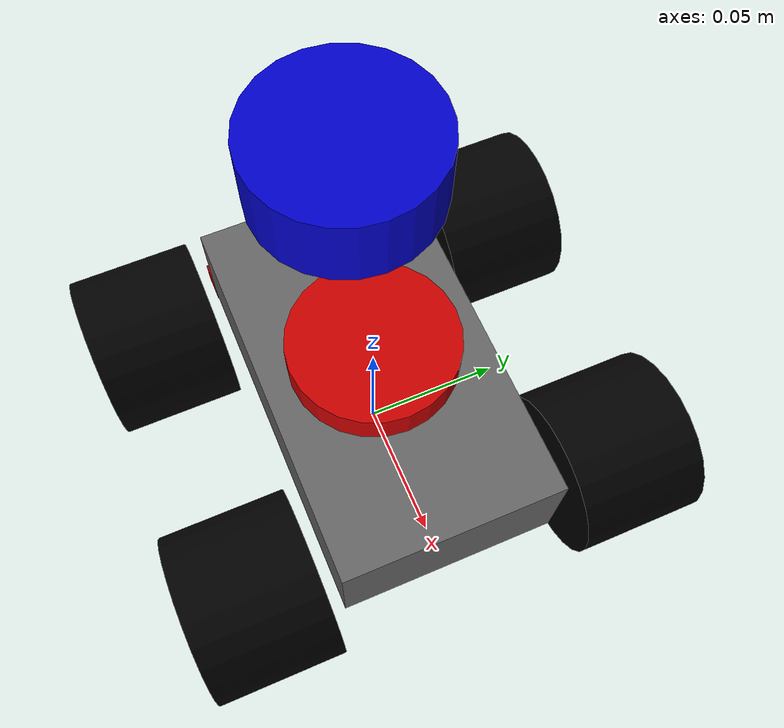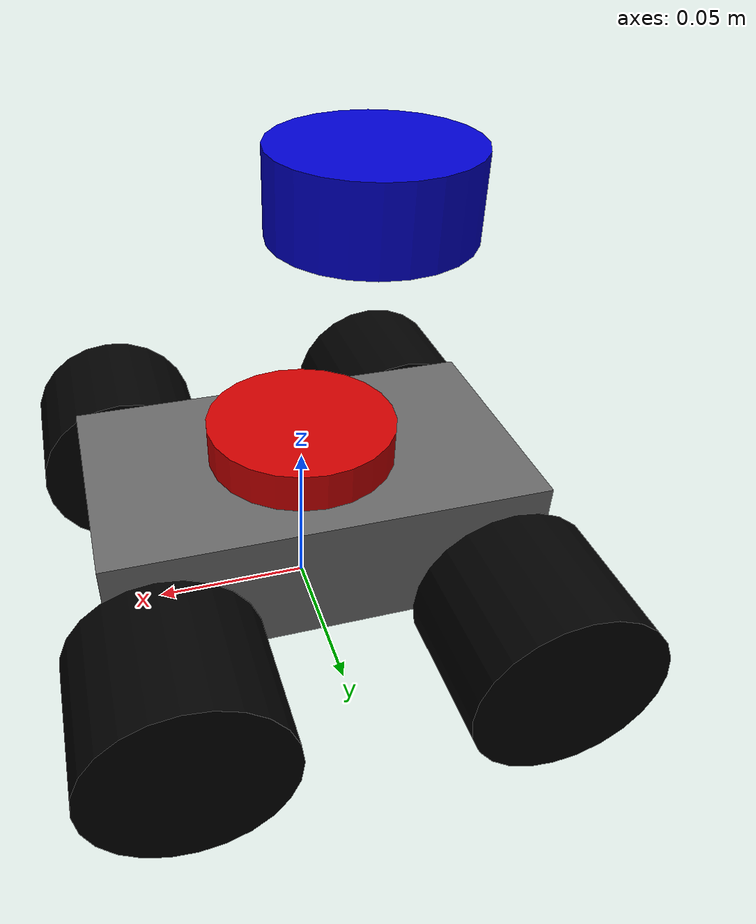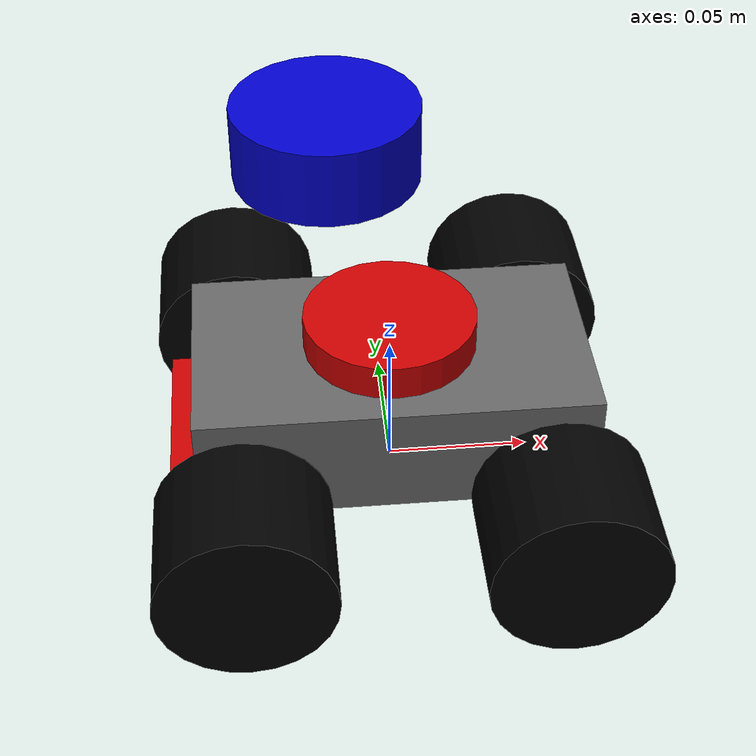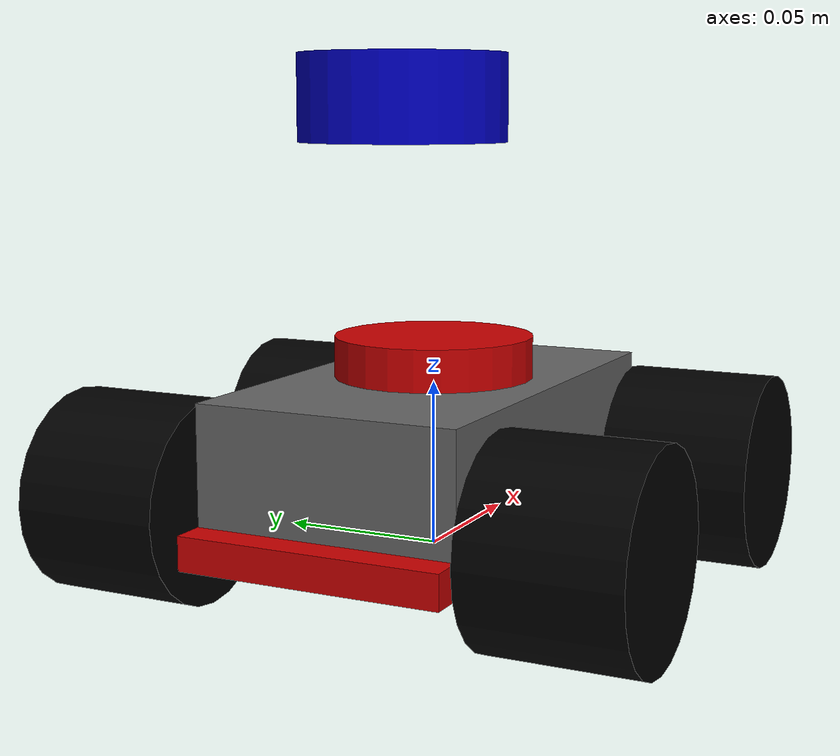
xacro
<?xml version="1.0"?>
<robot name="tracked_robot" xmlns:xacro="http://www.ros.org/wiki/xacro">
  <!-- ROS 2 ament-index lookup -->
  <xacro:include filename="$(find cyber_is_description)/urdf/common_properties.xacro"/>

  <!-- Parametry (stałe) używane w modelu -->
  <xacro:property name="wheel_radius" value="0.03"/>        <!-- Promień koła (55 mm średnicy) [m] -->
  <xacro:property name="wheel_diameter" value="${2 * wheel_radius}"/>
  <xacro:property name="chassis_height" value="0.04"/>
  <xacro:property name="track_width" value="0.045"/>          <!-- Szerokość (grubość) gąsienicy/koła [m] -->
  <xacro:property name="track_spacing" value="0.135"/>        <!-- Rozstaw między gąsienicami (środki) [m] -->
  <xacro:property name="half_track_spacing" value="${track_spacing / 2.0}"/>  <!-- Połowa rozstawu, odległość od środka do każdej gąsienicy -->
  <xacro:property name="frame_length" value="0.137"/>         <!-- Długość ramy [m] -->
  <xacro:property name="frame_width" value="0.079"/>          <!-- Szerokość ramy [m] -->
  <xacro:property name="chassis_top_height" value="0.052"/>     <!-- Wysokość od podłoża do wierzchu ramy [m] -->
  <xacro:property name="track_center_height" value="0.03"/>   <!-- Wysokość osi kół / środka gąsienicy nad podłożem [m] -->
  <xacro:property name="scan_height" value="0.135"/>          <!-- Wysokość skanera nad podłożem [m] -->
  <!-- Obliczenie pomocnicze: offset do umieszczenia ramy tak, by dolna powierzchnia była na podłożu -->
  <!-- (base_link jest na wysokości track_center_height, więc przesunięcie = połowa wysokości ramy - track_center_height) -->
  <xacro:property name="frame_bottom_offset" value="${chassis_top_height/2.0 - track_center_height}"/>

  <!-- Link bazowy na podłożu -->
  <link name="base_footprint">
    <!-- Uproszczona bryła kolizyjna reprezentująca obrys robota (prostokąt obejmujący gąsienice) -->
    <collision>
      <!-- Ustawienie pudełka tak, by leżało płasko na podłożu (połowa grubości nad podłożem) -->
      <origin xyz="0 0 0" rpy="0 0 0"/>
      <geometry>
        <!-- Prostokąt: długość ~ długości ramy, szerokość ~ rozstaw zewnętrzny gąsienic, niewielka grubość -->
        <box size="${frame_length} ${track_spacing + track_width} 0.01"/>
      </geometry>
    </collision>
    <!-- Ponieważ base_footprint jest tylko pomocniczy, nie definiujemy widocznej geometrii (visual) -->
    <inertial>
      <!-- Bardzo mała masa i momenty bezwładności (link fikcyjny łączony na sztywno z bazą) -->
      <mass value="0.001"/>
      <origin xyz="0 0 0" rpy="0 0 0"/>
      <inertia ixx="0.0001" ixy="0" ixz="0" iyy="0.0001" iyz="0" izz="0.0001"/>
    </inertial>
  </link>

  <!-- Link główny (rama pojazdu) -->
  <link name="base_link">
    <!-- Inercja ramy: przybliżona jako prostopadłościan o podanych wymiarach -->
    <inertial>
      <mass value="4.0"/>  <!-- Założona masa całej bazy [kg] -->
      <origin xyz="0 0 0" rpy="0 0 0"/>
      <!-- Moment bezwładności prostopadłościanu: Ixx = m/12*(y^2+z^2), Iyy = m/12*(x^2+z^2), Izz = m/12*(x^2+y^2) -->
      <inertia
          ixx="${4.0 * (frame_width*frame_width + chassis_top_height*chassis_top_height) / 12.0}"
          ixy="0" ixz="0"
          iyy="${4.0 * (frame_length*frame_length + chassis_top_height*chassis_top_height) / 12.0}"
          iyz="0"
          izz="${4.0 * (frame_length*frame_length + frame_width*frame_width) / 12.0}"/>
    </inertial>
    <!-- Widoczna geometria ramy (prostokątne podwozie) -->
    <visual>
      <!-- Przesunięcie pudełka tak, by dolna baza pudła pokryła się z podłożem (base_link jest nieco powyżej środka pudełka) -->
      <origin xyz="0 0 -${chassis_height/2}" rpy="0 0 0"/>
      <geometry>
        <box size="${frame_length} ${frame_width} ${chassis_height}"/>
      </geometry>
      <material name="Silver"/>  <!-- materiał (np. srebrny) -->
    </visual>
    <!-- (Brak osobnej geometrii kolizyjnej dla ramy zgodnie z założeniem, kolizja reprezentowana przez base_footprint) -->
  </link>

  <!-- Koła gąsienic (cztery cylindry) -->
  <!-- Lewe przednie koło -->
  <link name="left_front_wheel">
    <inertial>
      <mass value="0.2"/>  <!-- masa koła [kg] -->
      <origin xyz="0 0 0" rpy="0 0 0"/>
      <!-- Moment bezwładności koła (walca) względem osi symetrii i osi poprzecznych -->
      <!-- Walec: I_axial = 1/2*m*r^2 (wzdłuż osi walca), I_side = 1/12*m*(3r^2 + L^2) (względem osi przez środek, prostopadłej do walca) -->
      <inertia
          ixx="${0.2 * (3*wheel_radius*wheel_radius + track_width*track_width) / 12.0}"
          ixy="0" ixz="0"
          iyy="${0.2 * (wheel_radius*wheel_radius) / 2.0}"
          iyz="0"
          izz="${0.2 * (3*wheel_radius*wheel_radius + track_width*track_width) / 12.0}"/>
    </inertial>
    <visual>
      <!-- Obrót geometrii: -90° wokół osi X, aby walec leżał "na boku" (oś walca pokrywa się z osią Y linku, czyli osi obrotu koła) -->
      <origin xyz="0 0 0" rpy="-1.5708 0 0"/>
      <geometry>
        <cylinder radius="${wheel_radius}" length="${track_width}"/>
      </geometry>
      <material name="Black"/>
    </visual>
  </link>
  <!-- Lewe tylne koło -->
  <link name="left_rear_wheel">
    <!-- (Analogiczna definicja jak powyżej) -->
    <inertial>
      <mass value="0.2"/>
      <origin xyz="0 0 0" rpy="0 0 0"/>
      <inertia
          ixx="${0.2 * (3*wheel_radius*wheel_radius + track_width*track_width) / 12.0}"
          ixy="0" ixz="0"
          iyy="${0.2 * (wheel_radius*wheel_radius) / 2.0}"
          iyz="0"
          izz="${0.2 * (3*wheel_radius*wheel_radius + track_width*track_width) / 12.0}"/>
    </inertial>
    <visual>
      <origin xyz="0 0 0" rpy="-1.5708 0 0"/>
      <geometry>
        <cylinder radius="${wheel_radius}" length="${track_width}"/>
      </geometry>
      <material name="Black"/>
    </visual>
  </link>
  <!-- Prawe przednie koło -->
  <link name="right_front_wheel">
    <inertial>
      <mass value="0.2"/>
      <origin xyz="0 0 0" rpy="0 0 0"/>
      <inertia
          ixx="${0.2 * (3*wheel_radius*wheel_radius + track_width*track_width) / 12.0}"
          ixy="0" ixz="0"
          iyy="${0.2 * (wheel_radius*wheel_radius) / 2.0}"
          iyz="0"
          izz="${0.2 * (3*wheel_radius*wheel_radius + track_width*track_width) / 12.0}"/>
    </inertial>
    <visual>
      <origin xyz="0 0 0" rpy="-1.5708 0 0"/>
      <geometry>
        <cylinder radius="${wheel_radius}" length="${track_width}"/>
      </geometry>
      <material name="Black"/>
    </visual>
  </link>
  <!-- Prawe tylne koło -->
  <link name="right_rear_wheel">
    <inertial>
      <mass value="0.2"/>
      <origin xyz="0 0 0" rpy="0 0 0"/>
      <inertia
          ixx="${0.2 * (3*wheel_radius*wheel_radius + track_width*track_width) / 12.0}"
          ixy="0" ixz="0"
          iyy="${0.2 * (wheel_radius*wheel_radius) / 2.0}"
          iyz="0"
          izz="${0.2 * (3*wheel_radius*wheel_radius + track_width*track_width) / 12.0}"/>
    </inertial>
    <visual>
      <origin xyz="0 0 0" rpy="-1.5708 0 0"/>
      <geometry>
        <cylinder radius="${wheel_radius}" length="${track_width}"/>
      </geometry>
      <material name="Black"/>
    </visual>
  </link>

  <!-- Link skanera laserowego na ramie -->
  <link name="base_scan">
    <inertial>
      <mass value="0.1"/>
      <origin xyz="0 0 0" rpy="0 0 0"/>
      <!-- Przybliżony moment bezwładności niewielkiego skanera jako walca -->
      <inertia
          ixx="0.0001" ixy="0" ixz="0"
          iyy="0.0001" iyz="0"
          izz="0.0001"/>
    </inertial>
    <visual>
      <!-- Cylinder pionowy reprezentujący skaner -->
      <origin xyz="0 0 0" rpy="0 0 0"/>
      <geometry>
        <cylinder radius="0.03" length="0.025"/>
      </geometry>
      <material name="Blue"/>
    </visual>
    <!-- brak geometrii kolizyjnej (skaner nie koliduje) -->
  </link>

  <!-- Link imu o na ramie -->
  <link name="imu">
    <inertial>
      <mass value="0.1"/>
      <origin xyz="0 0 0" rpy="0 0 0"/>
      <!-- Przybliżony moment bezwładności niewielkiego skanera jako walca -->
      <inertia
          ixx="0.0001" ixy="0" ixz="0"
          iyy="0.0001" iyz="0"
          izz="0.0001"/>
    </inertial>
    <visual>
      <!-- Cylinder pionowy reprezentujący skaner -->
      <origin xyz="0 0 0" rpy="0 0 3.14159"/>
      <geometry>
        <cylinder radius="0.03" length="0.025"/>
      </geometry>
      <material name="Red"/>
    </visual>
    <!-- brak geometrii kolizyjnej (skaner nie koliduje) -->
  </link>

  <!-- Link imu o na ramie -->
  <link name="line_detector">
    <inertial>
      <mass value="0.1"/>
      <origin xyz="0 0 0" rpy="0 0 0"/>
      <!-- Przybliżony moment bezwładności niewielkiego skanera jako walca -->
      <inertia
              ixx="0.0001" ixy="0" ixz="0"
              iyy="0.0001" iyz="0"
              izz="0.0001"/>
    </inertial>
    <visual>
      <!-- Cylinder pionowy reprezentujący skaner -->
      <origin xyz="0 0 0" rpy="0 0 0"/>
      <geometry>
        <box size="0.01 ${frame_width} 0.01"/>
      </geometry>
      <material name="Red"/>
    </visual>
    <!-- brak geometrii kolizyjnej (skaner nie koliduje) -->
  </link>

  <!-- Połączenia (joints) między linkami -->
  <!-- Stałe połączenie base_footprint (na ziemi) z base_link (ramą) -->
  <joint name="base_link_joint" type="fixed">
    <!-- base_link znajduje się track_center_height nad base_footprint (z = 0.03 m) -->
    <origin xyz="0 0 ${chassis_top_height}" rpy="0 0 3.14159"/>
    <parent link="base_footprint"/>
    <child link="base_link"/>
  </joint>

  <!-- Połączenia (joints) między linkami -->
  <!-- Stałe połączenie base_link z imu (ramą) -->
  <joint name="imu_joint" type="fixed">
    <!-- Pozycja: z przodu (x = +half długości), na lewo (y = +half rozstawu), na wysokości osi (z = track_center_height) -->
    <origin xyz="0 0 0" rpy="0 0 0"/>
    <parent link="base_link"/>
    <child link="imu"/>
    <!-- Oś obrotu: pozioma, w poprzek pojazdu (oś Y układu bazowego) -->
  </joint>

  <!-- Połączenie stałe base_link z line_detector -->
  <joint name="line_detector_joint" type="fixed">
    <!-- Pozycja: z przodu (x = +half długości), na lewo (y = +half rozstawu), na wysokości osi (z = track_center_height) -->
    <origin xyz="${frame_length/2 +0.005} 0 -${chassis_height}" rpy="0 0 0"/>
    <parent link="base_link"/>
    <child link="line_detector"/>
    <!-- Oś obrotu: pozioma, w poprzek pojazdu (oś Y układu bazowego) -->
  </joint>

  <!-- Koła przymocowane do ramy: przeguby obrotowe (continuous) -->
  <!-- Lewe przednie koło -->
  <joint name="left_front_wheel_joint" type="continuous">
    <!-- Pozycja: z przodu (x = +half długości), na lewo (y = +half rozstawu), na wysokości osi (z = track_center_height) -->
    <origin xyz="${frame_length/2-0.015} ${half_track_spacing} -${chassis_top_height-chassis_height/2}" rpy="0 0 0"/>
    <parent link="base_link"/>
    <child link="left_front_wheel"/>
    <!-- Oś obrotu: pozioma, w poprzek pojazdu (oś Y układu bazowego) -->
    <axis xyz="0 1 0"/>
  </joint>
  <!-- Lewe tylne koło -->
  <joint name="left_rear_wheel_joint" type="continuous">
    <!-- Pozycja: z tyłu (x = -half długości), na lewo (y = +half rozstawu), wysokość osi = track_center_height -->
    <origin xyz="${-frame_length/2+0.015} ${half_track_spacing} -${chassis_top_height-chassis_height/2}" rpy="0 0 0"/>
    <parent link="base_link"/>
    <child link="left_rear_wheel"/>
    <axis xyz="0 1 0"/>
  </joint>
  <!-- Prawe przednie koło -->
  <joint name="right_front_wheel_joint" type="continuous">
    <!-- Pozycja: z przodu, na prawo (y = -half rozstawu) -->
    <origin xyz="${frame_length/2-0.015} ${-half_track_spacing} -${chassis_top_height-chassis_height/2}" rpy="0 0 0"/>
    <parent link="base_link"/>
    <child link="right_front_wheel"/>
    <axis xyz="0 1 0"/>
  </joint>
  <!-- Prawe tylne koło -->
  <joint name="right_rear_wheel_joint" type="continuous">
    <!-- Pozycja: z tyłu, na prawo -->
    <origin xyz="${-frame_length/2+0.015} ${-half_track_spacing} -${chassis_top_height-chassis_height/2}" rpy="0 0 0"/>
    <parent link="base_link"/>
    <child link="right_rear_wheel"/>
    <axis xyz="0 1 0"/>
  </joint>
  <!-- Stałe połączenie skanera do ramy -->
  <joint name="base_scan_joint" type="fixed">
    <origin xyz="0.02 0 ${scan_height - chassis_top_height}" rpy="0 0 3.14159"/>
    <parent link="base_link"/>
    <child link="base_scan"/>
  </joint>

  <!-- (Opcjonalnie można dodać elementy konfiguracyjne dla Gazebo, np. współczynniki tarcia) -->
  <!-- Przykładowo, zwiększenie tarcia dla powierzchni gąsienic: -->
</robot>

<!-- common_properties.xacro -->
<robot name="xacro_properties" xmlns:xacro="http://www.ros.org/wiki/xacro">

  <!-- Init colour -->
  <material name="Black">
      <color rgba="0.0 0.0 0.0 1.0"/>
  </material>

  <material name="Dark">
    <color rgba="0.3 0.3 0.3 1.0"/>
  </material>
  <material name="Silver">
    <color rgba="0.4 0.4 0.4 1.0"/>
  </material>

  <material name="Blue">
    <color rgba="0.0 0.0 0.8 1.0"/>
  </material>

  <material name="Green">
    <color rgba="0.0 0.8 0.0 1.0"/>
  </material>

  <material name="Grey">
    <color rgba="0.5 0.5 0.5 1.0"/>
  </material>

  <material name="Orange">
    <color rgba="${255/255} ${108/255} ${10/255} 1.0"/>
  </material>

  <material name="Brown">
    <color rgba="${222/255} ${207/255} ${195/255} 1.0"/>
  </material>

  <material name="Red">
    <color rgba="0.8 0.0 0.0 1.0"/>
  </material>

  <material name="White">
    <color rgba="1.0 1.0 1.0 1.0"/>
  </material>
</robot>
